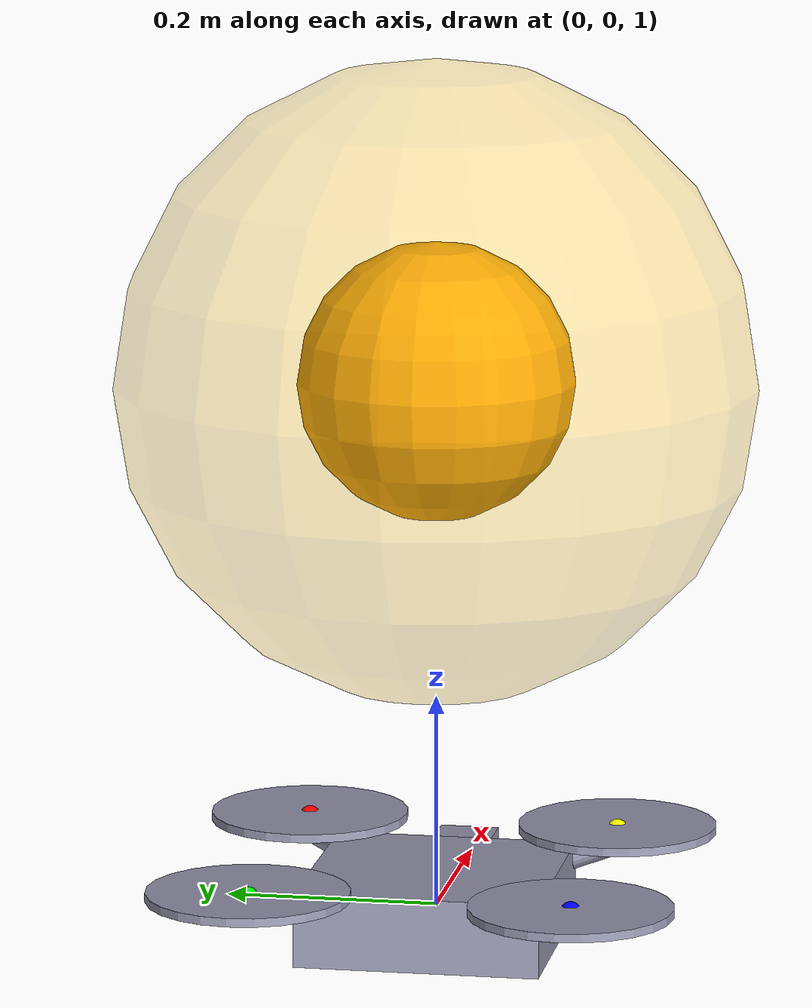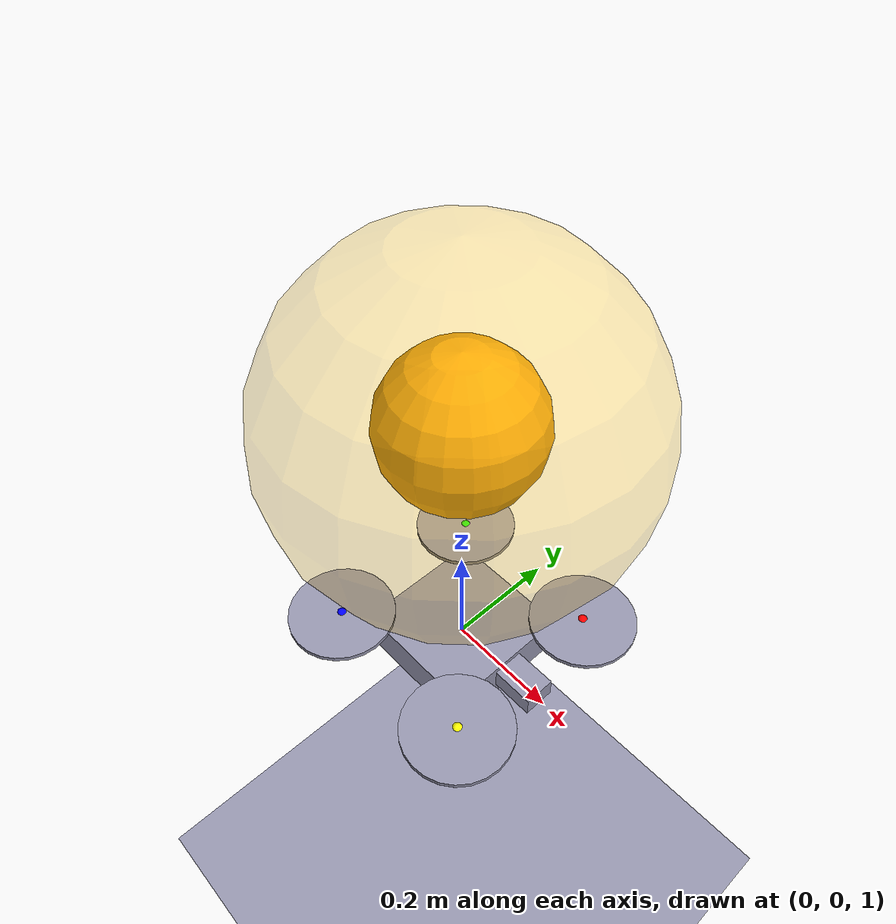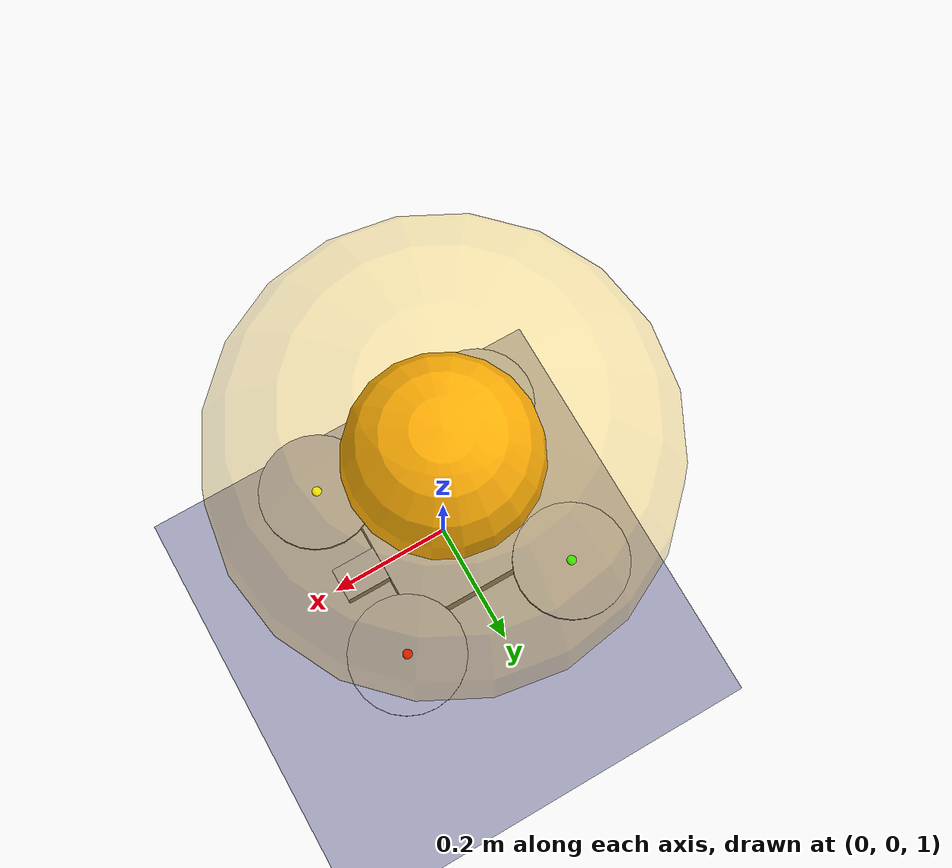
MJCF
<mujoco model="flyada_quadrotor_render">

  <option timestep="0.002" gravity="0 0 -9.81" integrator="RK4" iterations="20"/>

  <visual>
    <!-- Bright, low-contrast lighting: this is rendered for a projector, where
         a dark scene with a hot specular highlight reads as mud. -->
    <headlight ambient="0.72 0.72 0.75" diffuse="0.62 0.62 0.62"
               specular="0.12 0.12 0.12"/>
    <quality shadowsize="4096" offsamples="8"/>
    <map znear="0.02" zfar="60" shadowclip="8"/>
  </visual>

  <asset>
    <texture name="sky" type="skybox" builtin="gradient"
             rgb1="0.55 0.70 0.90" rgb2="0.97 0.98 1.00" width="512" height="512"/>
    <texture name="grid" type="2d" builtin="checker"
             rgb1="0.90 0.91 0.94" rgb2="0.98 0.98 0.99" width="512" height="512"/>
    <material name="floor" texture="grid" texrepeat="14 14" reflectance="0.0"
              specular="0.05" shininess="0.05"/>
    <material name="hull"   rgba="0.18 0.20 0.24 1" specular="0.35" shininess="0.4"/>
    <material name="arm"    rgba="0.92 0.41 0.20 1" specular="0.25" shininess="0.3"/>
    <material name="rotor"  rgba="0.16 0.42 0.80 0.50" specular="0.3" shininess="0.4"/>
    <material name="nose"   rgba="0.98 0.78 0.10 1" specular="0.3"/>
  </asset>

  <default>
    <geom rgba="0.6 0.6 0.7 1"/>
    <general ctrlrange="0 6" ctrllimited="true"/>
    <!-- Every cosmetic geom inherits this class: no collision, no mass. -->
    <default class="deco">
      <geom contype="0" conaffinity="0" mass="0" density="0" group="1"/>
    </default>
  </default>

  <worldbody>
    <!-- One soft directional light, aimed so the shadow falls away from camera. -->
    <light pos="6 -8 12" dir="-0.4 0.55 -1" directional="true"
           diffuse="0.35 0.35 0.35" specular="0.05 0.05 0.05" castshadow="true"/>
    <geom type="plane" size="20 20 0.1" material="floor"/>

    <body name="goalmarker" mocap="true" pos="0 0 1.5">
      <geom class="deco" type="sphere" size="0.30" rgba="1.00 0.76 0.06 0.30"/>
      <geom class="deco" type="sphere" size="0.13" rgba="0.98 0.64 0.02 1.0"/>
    </body>

    <body name="quad" pos="0 0 1.0">
      <freejoint/>
      <inertial pos="0 0 0" mass="1.0" diaginertia="0.005 0.005 0.009"/>
      <geom type="box" size="0.18 0.18 0.04" rgba="0 0 0 0"/>

      <!-- cosmetic airframe -->
      <geom class="deco" type="box" size="0.115 0.115 0.035" material="hull"/>
      <geom class="deco" type="box" pos="0.135 0 0.008" size="0.055 0.028 0.018"
            material="nose"/>
      <geom class="deco" type="capsule" fromto="0 0 0.005  0.15  0.15 0.03"
            size="0.014" material="arm"/>
      <geom class="deco" type="capsule" fromto="0 0 0.005 -0.15  0.15 0.03"
            size="0.014" material="arm"/>
      <geom class="deco" type="capsule" fromto="0 0 0.005 -0.15 -0.15 0.03"
            size="0.014" material="arm"/>
      <geom class="deco" type="capsule" fromto="0 0 0.005  0.15 -0.15 0.03"
            size="0.014" material="arm"/>
      <geom class="deco" type="cylinder" pos=" 0.15  0.15 0.042" size="0.095 0.004"
            material="rotor"/>
      <geom class="deco" type="cylinder" pos="-0.15  0.15 0.042" size="0.095 0.004"
            material="rotor"/>
      <geom class="deco" type="cylinder" pos="-0.15 -0.15 0.042" size="0.095 0.004"
            material="rotor"/>
      <geom class="deco" type="cylinder" pos=" 0.15 -0.15 0.042" size="0.095 0.004"
            material="rotor"/>
      <geom class="deco" type="cylinder" pos=" 0.15  0.15 0.032" size="0.016 0.012"
            material="hull"/>
      <geom class="deco" type="cylinder" pos="-0.15  0.15 0.032" size="0.016 0.012"
            material="hull"/>
      <geom class="deco" type="cylinder" pos="-0.15 -0.15 0.032" size="0.016 0.012"
            material="hull"/>
      <geom class="deco" type="cylinder" pos=" 0.15 -0.15 0.032" size="0.016 0.012"
            material="hull"/>

      <site name="rotor_fr" pos=" 0.15  0.15 0.04" size="0.01" rgba="1 0 0 1"/>
      <site name="rotor_fl" pos="-0.15  0.15 0.04" size="0.01" rgba="0 1 0 1"/>
      <site name="rotor_rl" pos="-0.15 -0.15 0.04" size="0.01" rgba="0 0 1 1"/>
      <site name="rotor_rr" pos=" 0.15 -0.15 0.04" size="0.01" rgba="1 1 0 1"/>
    </body>
  </worldbody>

  <actuator>
    <general site="rotor_fr" gear="0 0 1 0 0 -0.02"/>
    <general site="rotor_fl" gear="0 0 1 0 0  0.02"/>
    <general site="rotor_rl" gear="0 0 1 0 0 -0.02"/>
    <general site="rotor_rr" gear="0 0 1 0 0  0.02"/>
  </actuator>
</mujoco>
